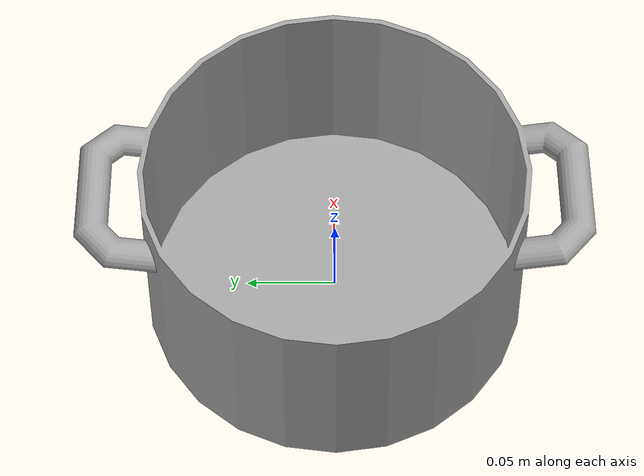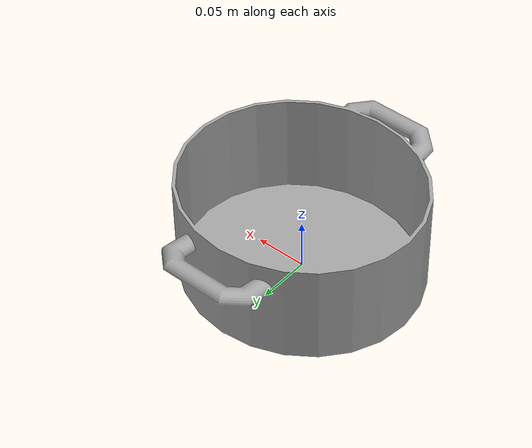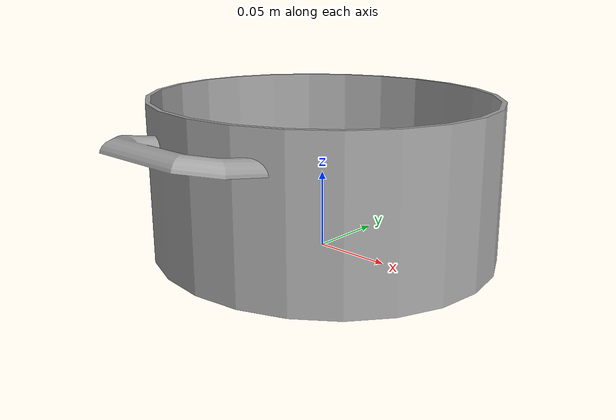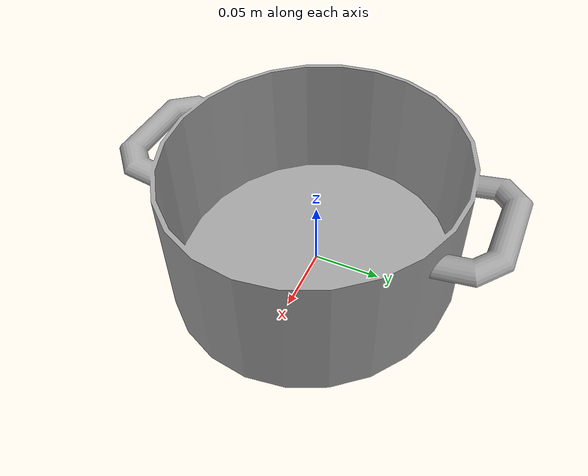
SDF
<?xml version="1.0" ?>
<sdf version="1.5">
  <model name="pot">
    <link name="pot">
      <inertial>
        <mass>0.390</mass>
        <inertia>
          <ixx>0.00058</ixx>
          <ixy>0</ixy>
          <ixz>0</ixz>
          <iyy>0.00058</iyy>
          <iyz>0</iyz>
          <izz>0.00019</izz>
        </inertia>
      </inertial>
      <collision name="pot_collision">
        <geometry>
          <mesh>
            <uri>model://pot/meshes/pot.dae</uri>
          </mesh>
        </geometry>
        <surface>
          <friction>
            <ode>
              <mu>1.0</mu>
              <mu2>1.0</mu2>
            </ode>
          </friction>
          <contact>
            <ode>
              <kp>10000000.0</kp>
              <kd>1.0</kd>
              <min_depth>0.001</min_depth>
              <max_vel>0.1</max_vel>
            </ode>
          </contact>
        </surface>
      </collision>
      <visual name="pot_visual">
        <geometry>
          <mesh>
            <uri>model://pot/meshes/pot.dae</uri>
          </mesh>
        </geometry>
      </visual>
    </link>
  </model>
</sdf>
